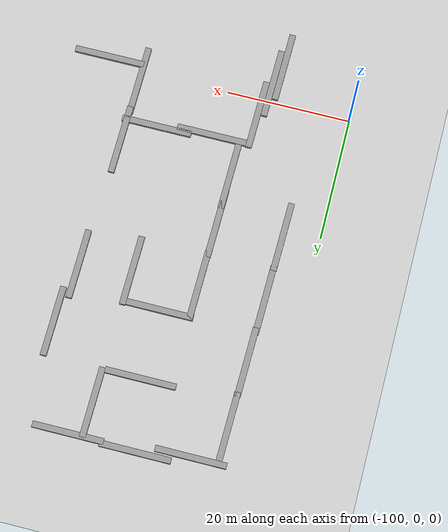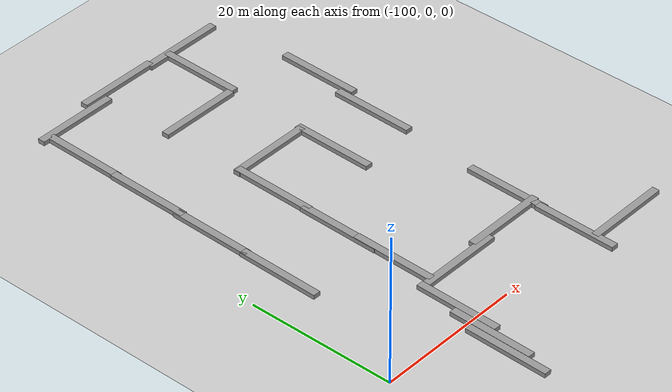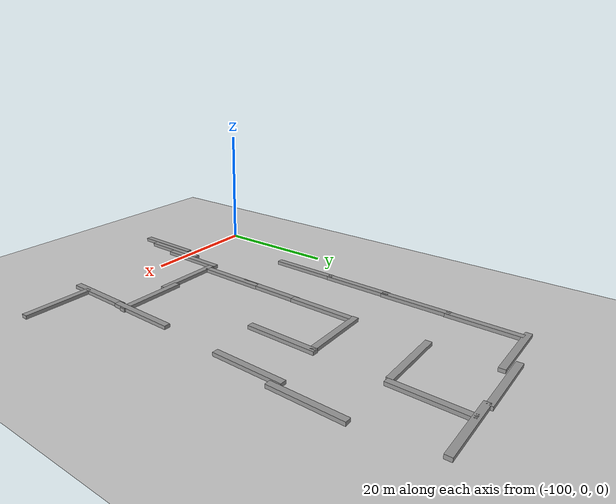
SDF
<sdf version="1.6">
 <world name="default">
  <model name="ground_plane">
   <static>1</static>
   <link name="link">
    <collision name="collision">
     <geometry><plane><normal>0 0 1</normal><size>100 100</size></plane></geometry>
     <surface><friction><ode><mu>100</mu><mu2>50</mu2></ode></friction></surface>
    </collision>
    <visual name="visual">
     <cast_shadows>0</cast_shadows>
     <geometry><plane><normal>0 0 1</normal><size>100 100</size></plane></geometry>
     <material>
      <script><uri>file://media/materials/scripts/gazebo.material</uri><name>Gazebo/Grey</name></script>
     </material>
    </visual>
   </link>
  </model>
  <model name="unit_box_0_static_clone_31">
   <link name="link">
    <inertial>
     <mass>11.3696</mass>
     <inertia><ixx>1.89495</ixx><ixy>0</ixy><ixz>0</ixz><iyy>123.426</iyy><iyz>0</iyz><izz>123.426</izz></inertia>
    </inertial>
    <kinematic>1</kinematic>
    <visual name="visual">
     <geometry><box><size>11.3696 1 1</size></box></geometry>
     <material>
      <script><name>Gazebo/Grey</name><uri>file://media/materials/scripts/gazebo.material</uri></script>
      <ambient>0.3 0.3 0.3 1</ambient>
      <diffuse>0.7 0.7 0.7 1</diffuse>
      <specular>0.01 0.01 0.01 1</specular>
      <emissive>0 0 0 1</emissive>
     </material>
    </visual>
    <collision name="collision">
     <geometry><box><size>11.3696 1 1</size></box></geometry>
     <surface>
      <friction>
       <ode><mu>1</mu><mu2>1</mu2><fdir1>0 0 0</fdir1><slip1>0</slip1><slip2>0</slip2></ode>
       <torsional>
        <coefficient>1</coefficient>
        <patch_radius>0</patch_radius>
        <surface_radius>0</surface_radius>
        <use_patch_radius>1</use_patch_radius>
        <ode><slip>0</slip></ode>
       </torsional>
      </friction>
      <bounce><restitution_coefficient>0</restitution_coefficient><threshold>1e+06</threshold></bounce>
      <contact>
       <collide_without_contact>0</collide_without_contact>
       <collide_without_contact_bitmask>1</collide_without_contact_bitmask>
       <collide_bitmask>1</collide_bitmask>
       <ode>
        <soft_cfm>0</soft_cfm>
        <soft_erp>0.2</soft_erp>
        <kp>1e+13</kp>
        <kd>1</kd>
        <max_vel>0.01</max_vel>
        <min_depth>0</min_depth>
       </ode>
       <bullet>
        <split_impulse>1</split_impulse>
        <split_impulse_penetration_threshold>-0.01</split_impulse_penetration_threshold>
        <soft_cfm>0</soft_cfm>
        <soft_erp>0.2</soft_erp>
        <kp>1e+13</kp>
        <kd>1</kd>
       </bullet>
      </contact>
     </surface>
    </collision>
   </link>
   <static>1</static>
   <pose>-70.2954 8.34873 0 0 -0 0</pose>
  </model>
  <model name="unit_box_0_static_clone_32">
   <link name="link">
    <inertial>
     <mass>11.3696</mass>
     <inertia><ixx>1.89495</ixx><ixy>0</ixy><ixz>0</ixz><iyy>123.426</iyy><iyz>0</iyz><izz>123.426</izz></inertia>
    </inertial>
    <kinematic>1</kinematic>
    <visual name="visual">
     <geometry><box><size>11.3696 1 1</size></box></geometry>
     <material>
      <script><name>Gazebo/Grey</name><uri>file://media/materials/scripts/gazebo.material</uri></script>
      <ambient>0.3 0.3 0.3 1</ambient>
      <diffuse>0.7 0.7 0.7 1</diffuse>
      <specular>0.01 0.01 0.01 1</specular>
      <emissive>0 0 0 1</emissive>
     </material>
    </visual>
    <collision name="collision">
     <geometry><box><size>11.3696 1 1</size></box></geometry>
     <surface>
      <friction>
       <ode><mu>1</mu><mu2>1</mu2><fdir1>0 0 0</fdir1><slip1>0</slip1><slip2>0</slip2></ode>
       <torsional>
        <coefficient>1</coefficient>
        <patch_radius>0</patch_radius>
        <surface_radius>0</surface_radius>
        <use_patch_radius>1</use_patch_radius>
        <ode><slip>0</slip></ode>
       </torsional>
      </friction>
      <bounce><restitution_coefficient>0</restitution_coefficient><threshold>1e+06</threshold></bounce>
      <contact>
       <collide_without_contact>0</collide_without_contact>
       <collide_without_contact_bitmask>1</collide_without_contact_bitmask>
       <collide_bitmask>1</collide_bitmask>
       <ode>
        <soft_cfm>0</soft_cfm>
        <soft_erp>0.2</soft_erp>
        <kp>1e+13</kp>
        <kd>1</kd>
        <max_vel>0.01</max_vel>
        <min_depth>0</min_depth>
       </ode>
       <bullet>
        <split_impulse>1</split_impulse>
        <split_impulse_penetration_threshold>-0.01</split_impulse_penetration_threshold>
        <soft_cfm>0</soft_cfm>
        <soft_erp>0.2</soft_erp>
        <kp>1e+13</kp>
        <kd>1</kd>
       </bullet>
      </contact>
     </surface>
    </collision>
   </link>
   <static>1</static>
   <pose>-79.1987 7.62941 0 0 -0 0</pose>
  </model>
  <model name="unit_box_0_static_clone_35_clone_5">
   <link name="link">
    <inertial>
     <mass>11.3696</mass>
     <inertia><ixx>1.89495</ixx><ixy>0</ixy><ixz>0</ixz><iyy>123.426</iyy><iyz>0</iyz><izz>123.426</izz></inertia>
    </inertial>
    <kinematic>1</kinematic>
    <visual name="visual">
     <geometry><box><size>11.3696 1 1</size></box></geometry>
     <material>
      <script><name>Gazebo/Grey</name><uri>file://media/materials/scripts/gazebo.material</uri></script>
      <ambient>0.3 0.3 0.3 1</ambient>
      <diffuse>0.7 0.7 0.7 1</diffuse>
      <specular>0.01 0.01 0.01 1</specular>
      <emissive>0 0 0 1</emissive>
     </material>
    </visual>
    <collision name="collision">
     <geometry><box><size>11.3696 1 1</size></box></geometry>
     <surface>
      <friction>
       <ode><mu>1</mu><mu2>1</mu2><fdir1>0 0 0</fdir1><slip1>0</slip1><slip2>0</slip2></ode>
       <torsional>
        <coefficient>1</coefficient>
        <patch_radius>0</patch_radius>
        <surface_radius>0</surface_radius>
        <use_patch_radius>1</use_patch_radius>
        <ode><slip>0</slip></ode>
       </torsional>
      </friction>
      <bounce><restitution_coefficient>0</restitution_coefficient><threshold>1e+06</threshold></bounce>
      <contact>
       <collide_without_contact>0</collide_without_contact>
       <collide_without_contact_bitmask>1</collide_without_contact_bitmask>
       <collide_bitmask>1</collide_bitmask>
       <ode>
        <soft_cfm>0</soft_cfm>
        <soft_erp>0.2</soft_erp>
        <kp>1e+13</kp>
        <kd>1</kd>
        <max_vel>0.01</max_vel>
        <min_depth>0</min_depth>
       </ode>
       <bullet>
        <split_impulse>1</split_impulse>
        <split_impulse_penetration_threshold>-0.01</split_impulse_penetration_threshold>
        <soft_cfm>0</soft_cfm>
        <soft_erp>0.2</soft_erp>
        <kp>1e+13</kp>
        <kd>1</kd>
       </bullet>
      </contact>
     </surface>
    </collision>
   </link>
   <static>1</static>
   <pose>-85.4789 2.52315 0 0 0 -1.5917</pose>
  </model>
  <model name="unit_box_0_static_clone_35_clone_6">
   <link name="link">
    <inertial>
     <mass>11.3696</mass>
     <inertia><ixx>1.89495</ixx><ixy>0</ixy><ixz>0</ixz><iyy>123.426</iyy><iyz>0</iyz><izz>123.426</izz></inertia>
    </inertial>
    <kinematic>1</kinematic>
    <visual name="visual">
     <geometry><box><size>11.3696 1 1</size></box></geometry>
     <material>
      <script><name>Gazebo/Grey</name><uri>file://media/materials/scripts/gazebo.material</uri></script>
      <ambient>0.3 0.3 0.3 1</ambient>
      <diffuse>0.7 0.7 0.7 1</diffuse>
      <specular>0.01 0.01 0.01 1</specular>
      <emissive>0 0 0 1</emissive>
     </material>
    </visual>
    <collision name="collision">
     <geometry><box><size>11.3696 1 1</size></box></geometry>
     <surface>
      <friction>
       <ode><mu>1</mu><mu2>1</mu2><fdir1>0 0 0</fdir1><slip1>0</slip1><slip2>0</slip2></ode>
       <torsional>
        <coefficient>1</coefficient>
        <patch_radius>0</patch_radius>
        <surface_radius>0</surface_radius>
        <use_patch_radius>1</use_patch_radius>
        <ode><slip>0</slip></ode>
       </torsional>
      </friction>
      <bounce><restitution_coefficient>0</restitution_coefficient><threshold>1e+06</threshold></bounce>
      <contact>
       <collide_without_contact>0</collide_without_contact>
       <collide_without_contact_bitmask>1</collide_without_contact_bitmask>
       <collide_bitmask>1</collide_bitmask>
       <ode>
        <soft_cfm>0</soft_cfm>
        <soft_erp>0.2</soft_erp>
        <kp>1e+13</kp>
        <kd>1</kd>
        <max_vel>0.01</max_vel>
        <min_depth>0</min_depth>
       </ode>
       <bullet>
        <split_impulse>1</split_impulse>
        <split_impulse_penetration_threshold>-0.01</split_impulse_penetration_threshold>
        <soft_cfm>0</soft_cfm>
        <soft_erp>0.2</soft_erp>
        <kp>1e+13</kp>
        <kd>1</kd>
       </bullet>
      </contact>
     </surface>
    </collision>
   </link>
   <static>1</static>
   <pose>-86.6039 -3.1929 0 0 0 -1.5917</pose>
  </model>
  <model name="unit_box_0_static_clone_35_clone_7">
   <link name="link">
    <inertial>
     <mass>11.3696</mass>
     <inertia><ixx>1.89495</ixx><ixy>0</ixy><ixz>0</ixz><iyy>123.426</iyy><iyz>0</iyz><izz>123.426</izz></inertia>
    </inertial>
    <kinematic>1</kinematic>
    <visual name="visual">
     <geometry><box><size>11.3696 1 1</size></box></geometry>
     <material>
      <script><name>Gazebo/Grey</name><uri>file://media/materials/scripts/gazebo.material</uri></script>
      <ambient>0.3 0.3 0.3 1</ambient>
      <diffuse>0.7 0.7 0.7 1</diffuse>
      <specular>0.01 0.01 0.01 1</specular>
      <emissive>0 0 0 1</emissive>
     </material>
    </visual>
    <collision name="collision">
     <geometry><box><size>11.3696 1 1</size></box></geometry>
     <surface>
      <friction>
       <ode><mu>1</mu><mu2>1</mu2><fdir1>0 0 0</fdir1><slip1>0</slip1><slip2>0</slip2></ode>
       <torsional>
        <coefficient>1</coefficient>
        <patch_radius>0</patch_radius>
        <surface_radius>0</surface_radius>
        <use_patch_radius>1</use_patch_radius>
        <ode><slip>0</slip></ode>
       </torsional>
      </friction>
      <bounce><restitution_coefficient>0</restitution_coefficient><threshold>1e+06</threshold></bounce>
      <contact>
       <collide_without_contact>0</collide_without_contact>
       <collide_without_contact_bitmask>1</collide_without_contact_bitmask>
       <collide_bitmask>1</collide_bitmask>
       <ode>
        <soft_cfm>0</soft_cfm>
        <soft_erp>0.2</soft_erp>
        <kp>1e+13</kp>
        <kd>1</kd>
        <max_vel>0.01</max_vel>
        <min_depth>0</min_depth>
       </ode>
       <bullet>
        <split_impulse>1</split_impulse>
        <split_impulse_penetration_threshold>-0.01</split_impulse_penetration_threshold>
        <soft_cfm>0</soft_cfm>
        <soft_erp>0.2</soft_erp>
        <kp>1e+13</kp>
        <kd>1</kd>
       </bullet>
      </contact>
     </surface>
    </collision>
   </link>
   <static>1</static>
   <pose>-87.6852 -6.31713 0 0 0 -1.5917</pose>
  </model>
  <model name="unit_box_0_static_clone_35_clone_7_clone">
   <link name="link">
    <inertial>
     <mass>11.3696</mass>
     <inertia><ixx>1.89495</ixx><ixy>0</ixy><ixz>0</ixz><iyy>123.426</iyy><iyz>0</iyz><izz>123.426</izz></inertia>
    </inertial>
    <kinematic>1</kinematic>
    <visual name="visual">
     <geometry><box><size>11.3696 1 1</size></box></geometry>
     <material>
      <script><name>Gazebo/Grey</name><uri>file://media/materials/scripts/gazebo.material</uri></script>
      <ambient>0.3 0.3 0.3 1</ambient>
      <diffuse>0.7 0.7 0.7 1</diffuse>
      <specular>0.01 0.01 0.01 1</specular>
      <emissive>0 0 0 1</emissive>
     </material>
    </visual>
    <collision name="collision">
     <geometry><box><size>11.3696 1 1</size></box></geometry>
     <surface>
      <friction>
       <ode><mu>1</mu><mu2>1</mu2><fdir1>0 0 0</fdir1><slip1>0</slip1><slip2>0</slip2></ode>
       <torsional>
        <coefficient>1</coefficient>
        <patch_radius>0</patch_radius>
        <surface_radius>0</surface_radius>
        <use_patch_radius>1</use_patch_radius>
        <ode><slip>0</slip></ode>
       </torsional>
      </friction>
      <bounce><restitution_coefficient>0</restitution_coefficient><threshold>1e+06</threshold></bounce>
      <contact>
       <collide_without_contact>0</collide_without_contact>
       <collide_without_contact_bitmask>1</collide_without_contact_bitmask>
       <collide_bitmask>1</collide_bitmask>
       <ode>
        <soft_cfm>0</soft_cfm>
        <soft_erp>0.2</soft_erp>
        <kp>1e+13</kp>
        <kd>1</kd>
        <max_vel>0.01</max_vel>
        <min_depth>0</min_depth>
       </ode>
       <bullet>
        <split_impulse>1</split_impulse>
        <split_impulse_penetration_threshold>-0.01</split_impulse_penetration_threshold>
        <soft_cfm>0</soft_cfm>
        <soft_erp>0.2</soft_erp>
        <kp>1e+13</kp>
        <kd>1</kd>
       </bullet>
      </contact>
     </surface>
    </collision>
   </link>
   <static>1</static>
   <pose>-65.6401 1.59168 0 0 0 -1.5917</pose>
  </model>
  <model name="unit_box_0_static_clone_31_clone">
   <link name="link">
    <inertial>
     <mass>11.3696</mass>
     <inertia><ixx>1.89495</ixx><ixy>0</ixy><ixz>0</ixz><iyy>123.426</iyy><iyz>0</iyz><izz>123.426</izz></inertia>
    </inertial>
    <kinematic>1</kinematic>
    <visual name="visual">
     <geometry><box><size>11.3696 1 1</size></box></geometry>
     <material>
      <script><name>Gazebo/Grey</name><uri>file://media/materials/scripts/gazebo.material</uri></script>
      <ambient>0.3 0.3 0.3 1</ambient>
      <diffuse>0.7 0.7 0.7 1</diffuse>
      <specular>0.01 0.01 0.01 1</specular>
      <emissive>0 0 0 1</emissive>
     </material>
    </visual>
    <collision name="collision">
     <geometry><box><size>11.3696 1 1</size></box></geometry>
     <surface>
      <friction>
       <ode><mu>1</mu><mu2>1</mu2><fdir1>0 0 0</fdir1><slip1>0</slip1><slip2>0</slip2></ode>
       <torsional>
        <coefficient>1</coefficient>
        <patch_radius>0</patch_radius>
        <surface_radius>0</surface_radius>
        <use_patch_radius>1</use_patch_radius>
        <ode><slip>0</slip></ode>
       </torsional>
      </friction>
      <bounce><restitution_coefficient>0</restitution_coefficient><threshold>1e+06</threshold></bounce>
      <contact>
       <collide_without_contact>0</collide_without_contact>
       <collide_without_contact_bitmask>1</collide_without_contact_bitmask>
       <collide_bitmask>1</collide_bitmask>
       <ode>
        <soft_cfm>0</soft_cfm>
        <soft_erp>0.2</soft_erp>
        <kp>1e+13</kp>
        <kd>1</kd>
        <max_vel>0.01</max_vel>
        <min_depth>0</min_depth>
       </ode>
       <bullet>
        <split_impulse>1</split_impulse>
        <split_impulse_penetration_threshold>-0.01</split_impulse_penetration_threshold>
        <soft_cfm>0</soft_cfm>
        <soft_erp>0.2</soft_erp>
        <kp>1e+13</kp>
        <kd>1</kd>
       </bullet>
      </contact>
     </surface>
    </collision>
   </link>
   <static>1</static>
   <pose>-59.9978 -1.18994 0 0 -0 0</pose>
  </model>
  <model name="unit_box_0_static_clone_35_clone_10_clone_clone_clone_clone_0">
   <link name="link">
    <inertial>
     <mass>11.3696</mass>
     <inertia><ixx>1.89495</ixx><ixy>0</ixy><ixz>0</ixz><iyy>123.426</iyy><iyz>0</iyz><izz>123.426</izz></inertia>
    </inertial>
    <kinematic>1</kinematic>
    <visual name="visual">
     <geometry><box><size>11.3696 1 1</size></box></geometry>
     <material>
      <script><name>Gazebo/Grey</name><uri>file://media/materials/scripts/gazebo.material</uri></script>
      <ambient>0.3 0.3 0.3 1</ambient>
      <diffuse>0.7 0.7 0.7 1</diffuse>
      <specular>0.01 0.01 0.01 1</specular>
      <emissive>0 0 0 1</emissive>
     </material>
    </visual>
    <collision name="collision">
     <geometry><box><size>11.3696 1 1</size></box></geometry>
     <surface>
      <friction>
       <ode><mu>1</mu><mu2>1</mu2><fdir1>0 0 0</fdir1><slip1>0</slip1><slip2>0</slip2></ode>
       <torsional>
        <coefficient>1</coefficient>
        <patch_radius>0</patch_radius>
        <surface_radius>0</surface_radius>
        <use_patch_radius>1</use_patch_radius>
        <ode><slip>0</slip></ode>
       </torsional>
      </friction>
      <bounce><restitution_coefficient>0</restitution_coefficient><threshold>1e+06</threshold></bounce>
      <contact>
       <collide_without_contact>0</collide_without_contact>
       <collide_without_contact_bitmask>1</collide_without_contact_bitmask>
       <collide_bitmask>1</collide_bitmask>
       <ode>
        <soft_cfm>0</soft_cfm>
        <soft_erp>0.2</soft_erp>
        <kp>1e+13</kp>
        <kd>1</kd>
        <max_vel>0.01</max_vel>
        <min_depth>0</min_depth>
       </ode>
       <bullet>
        <split_impulse>1</split_impulse>
        <split_impulse_penetration_threshold>-0.01</split_impulse_penetration_threshold>
        <soft_cfm>0</soft_cfm>
        <soft_erp>0.2</soft_erp>
        <kp>1e+13</kp>
        <kd>1</kd>
       </bullet>
      </contact>
     </surface>
    </collision>
   </link>
   <static>1</static>
   <pose>-62.671 43.236 0 0 0 -1.5917</pose>
  </model>
  <model name="unit_box_0_static_clone_35_clone_10_clone_clone_clone_clone_1">
   <link name="link">
    <inertial>
     <mass>11.3696</mass>
     <inertia><ixx>1.89495</ixx><ixy>0</ixy><ixz>0</ixz><iyy>123.426</iyy><iyz>0</iyz><izz>123.426</izz></inertia>
    </inertial>
    <kinematic>1</kinematic>
    <visual name="visual">
     <geometry><box><size>11.3696 1 1</size></box></geometry>
     <material>
      <script><name>Gazebo/Grey</name><uri>file://media/materials/scripts/gazebo.material</uri></script>
      <ambient>0.3 0.3 0.3 1</ambient>
      <diffuse>0.7 0.7 0.7 1</diffuse>
      <specular>0.01 0.01 0.01 1</specular>
      <emissive>0 0 0 1</emissive>
     </material>
    </visual>
    <collision name="collision">
     <geometry><box><size>11.3696 1 1</size></box></geometry>
     <surface>
      <friction>
       <ode><mu>1</mu><mu2>1</mu2><fdir1>0 0 0</fdir1><slip1>0</slip1><slip2>0</slip2></ode>
       <torsional>
        <coefficient>1</coefficient>
        <patch_radius>0</patch_radius>
        <surface_radius>0</surface_radius>
        <use_patch_radius>1</use_patch_radius>
        <ode><slip>0</slip></ode>
       </torsional>
      </friction>
      <bounce><restitution_coefficient>0</restitution_coefficient><threshold>1e+06</threshold></bounce>
      <contact>
       <collide_without_contact>0</collide_without_contact>
       <collide_without_contact_bitmask>1</collide_without_contact_bitmask>
       <collide_bitmask>1</collide_bitmask>
       <ode>
        <soft_cfm>0</soft_cfm>
        <soft_erp>0.2</soft_erp>
        <kp>1e+13</kp>
        <kd>1</kd>
        <max_vel>0.01</max_vel>
        <min_depth>0</min_depth>
       </ode>
       <bullet>
        <split_impulse>1</split_impulse>
        <split_impulse_penetration_threshold>-0.01</split_impulse_penetration_threshold>
        <soft_cfm>0</soft_cfm>
        <soft_erp>0.2</soft_erp>
        <kp>1e+13</kp>
        <kd>1</kd>
       </bullet>
      </contact>
     </surface>
    </collision>
   </link>
   <static>1</static>
   <pose>-64.1051 33.3823 0 0 0 -1.5917</pose>
  </model>
  <model name="unit_box_0_static_clone_35_clone_10_clone_clone_clone_clone_2">
   <link name="link">
    <inertial>
     <mass>11.3696</mass>
     <inertia><ixx>1.89495</ixx><ixy>0</ixy><ixz>0</ixz><iyy>123.426</iyy><iyz>0</iyz><izz>123.426</izz></inertia>
    </inertial>
    <kinematic>1</kinematic>
    <visual name="visual">
     <geometry><box><size>11.3696 1 1</size></box></geometry>
     <material>
      <script><name>Gazebo/Grey</name><uri>file://media/materials/scripts/gazebo.material</uri></script>
      <ambient>0.3 0.3 0.3 1</ambient>
      <diffuse>0.7 0.7 0.7 1</diffuse>
      <specular>0.01 0.01 0.01 1</specular>
      <emissive>0 0 0 1</emissive>
     </material>
    </visual>
    <collision name="collision">
     <geometry><box><size>11.3696 1 1</size></box></geometry>
     <surface>
      <friction>
       <ode><mu>1</mu><mu2>1</mu2><fdir1>0 0 0</fdir1><slip1>0</slip1><slip2>0</slip2></ode>
       <torsional>
        <coefficient>1</coefficient>
        <patch_radius>0</patch_radius>
        <surface_radius>0</surface_radius>
        <use_patch_radius>1</use_patch_radius>
        <ode><slip>0</slip></ode>
       </torsional>
      </friction>
      <bounce><restitution_coefficient>0</restitution_coefficient><threshold>1e+06</threshold></bounce>
      <contact>
       <collide_without_contact>0</collide_without_contact>
       <collide_without_contact_bitmask>1</collide_without_contact_bitmask>
       <collide_bitmask>1</collide_bitmask>
       <ode>
        <soft_cfm>0</soft_cfm>
        <soft_erp>0.2</soft_erp>
        <kp>1e+13</kp>
        <kd>1</kd>
        <max_vel>0.01</max_vel>
        <min_depth>0</min_depth>
       </ode>
       <bullet>
        <split_impulse>1</split_impulse>
        <split_impulse_penetration_threshold>-0.01</split_impulse_penetration_threshold>
        <soft_cfm>0</soft_cfm>
        <soft_erp>0.2</soft_erp>
        <kp>1e+13</kp>
        <kd>1</kd>
       </bullet>
      </contact>
     </surface>
    </collision>
   </link>
   <static>1</static>
   <pose>-65.2895 11.9149 0 0 0 -1.5917</pose>
  </model>
  <model name="unit_box_0_static_clone_35_clone_10_clone_clone_clone_clone_1_clone">
   <link name="link">
    <inertial>
     <mass>11.3696</mass>
     <inertia><ixx>1.89495</ixx><ixy>0</ixy><ixz>0</ixz><iyy>123.426</iyy><iyz>0</iyz><izz>123.426</izz></inertia>
    </inertial>
    <kinematic>1</kinematic>
    <visual name="visual">
     <geometry><box><size>11.3696 1 1</size></box></geometry>
     <material>
      <script><name>Gazebo/Grey</name><uri>file://media/materials/scripts/gazebo.material</uri></script>
      <ambient>0.3 0.3 0.3 1</ambient>
      <diffuse>0.7 0.7 0.7 1</diffuse>
      <specular>0.01 0.01 0.01 1</specular>
      <emissive>0 0 0 1</emissive>
     </material>
    </visual>
    <collision name="collision">
     <geometry><box><size>11.3696 1 1</size></box></geometry>
     <surface>
      <friction>
       <ode><mu>1</mu><mu2>1</mu2><fdir1>0 0 0</fdir1><slip1>0</slip1><slip2>0</slip2></ode>
       <torsional>
        <coefficient>1</coefficient>
        <patch_radius>0</patch_radius>
        <surface_radius>0</surface_radius>
        <use_patch_radius>1</use_patch_radius>
        <ode><slip>0</slip></ode>
       </torsional>
      </friction>
      <bounce><restitution_coefficient>0</restitution_coefficient><threshold>1e+06</threshold></bounce>
      <contact>
       <collide_without_contact>0</collide_without_contact>
       <collide_without_contact_bitmask>1</collide_without_contact_bitmask>
       <collide_bitmask>1</collide_bitmask>
       <ode>
        <soft_cfm>0</soft_cfm>
        <soft_erp>0.2</soft_erp>
        <kp>1e+13</kp>
        <kd>1</kd>
        <max_vel>0.01</max_vel>
        <min_depth>0</min_depth>
       </ode>
       <bullet>
        <split_impulse>1</split_impulse>
        <split_impulse_penetration_threshold>-0.01</split_impulse_penetration_threshold>
        <soft_cfm>0</soft_cfm>
        <soft_erp>0.2</soft_erp>
        <kp>1e+13</kp>
        <kd>1</kd>
       </bullet>
      </contact>
     </surface>
    </collision>
   </link>
   <static>1</static>
   <pose>-72.5184 32.3568 0 0 0 -1.5917</pose>
  </model>
  <model name="unit_box_0_static_clone_35_clone_10_clone_clone_clone_clone_1_clone_0">
   <link name="link">
    <inertial>
     <mass>11.3696</mass>
     <inertia><ixx>1.89495</ixx><ixy>0</ixy><ixz>0</ixz><iyy>123.426</iyy><iyz>0</iyz><izz>123.426</izz></inertia>
    </inertial>
    <kinematic>1</kinematic>
    <visual name="visual">
     <geometry><box><size>11.3696 1 1</size></box></geometry>
     <material>
      <script><name>Gazebo/Grey</name><uri>file://media/materials/scripts/gazebo.material</uri></script>
      <ambient>0.3 0.3 0.3 1</ambient>
      <diffuse>0.7 0.7 0.7 1</diffuse>
      <specular>0.01 0.01 0.01 1</specular>
      <emissive>0 0 0 1</emissive>
     </material>
    </visual>
    <collision name="collision">
     <geometry><box><size>11.3696 1 1</size></box></geometry>
     <surface>
      <friction>
       <ode><mu>1</mu><mu2>1</mu2><fdir1>0 0 0</fdir1><slip1>0</slip1><slip2>0</slip2></ode>
       <torsional>
        <coefficient>1</coefficient>
        <patch_radius>0</patch_radius>
        <surface_radius>0</surface_radius>
        <use_patch_radius>1</use_patch_radius>
        <ode><slip>0</slip></ode>
       </torsional>
      </friction>
      <bounce><restitution_coefficient>0</restitution_coefficient><threshold>1e+06</threshold></bounce>
      <contact>
       <collide_without_contact>0</collide_without_contact>
       <collide_without_contact_bitmask>1</collide_without_contact_bitmask>
       <collide_bitmask>1</collide_bitmask>
       <ode>
        <soft_cfm>0</soft_cfm>
        <soft_erp>0.2</soft_erp>
        <kp>1e+13</kp>
        <kd>1</kd>
        <max_vel>0.01</max_vel>
        <min_depth>0</min_depth>
       </ode>
       <bullet>
        <split_impulse>1</split_impulse>
        <split_impulse_penetration_threshold>-0.01</split_impulse_penetration_threshold>
        <soft_cfm>0</soft_cfm>
        <soft_erp>0.2</soft_erp>
        <kp>1e+13</kp>
        <kd>1</kd>
       </bullet>
      </contact>
     </surface>
    </collision>
   </link>
   <static>1</static>
   <pose>-71.9102 54.1445 0 0 0 -1.5917</pose>
  </model>
  <model name="unit_box_0_static_clone_25_clone_1_clone_0_clone_1">
   <link name="link">
    <inertial>
     <mass>11.3696</mass>
     <inertia><ixx>1.89495</ixx><ixy>0</ixy><ixz>0</ixz><iyy>123.426</iyy><iyz>0</iyz><izz>123.426</izz></inertia>
    </inertial>
    <kinematic>1</kinematic>
    <visual name="visual">
     <geometry><box><size>11.3696 1 1</size></box></geometry>
     <material>
      <script><name>Gazebo/Grey</name><uri>file://media/materials/scripts/gazebo.material</uri></script>
      <ambient>0.3 0.3 0.3 1</ambient>
      <diffuse>0.7 0.7 0.7 1</diffuse>
      <specular>0.01 0.01 0.01 1</specular>
      <emissive>0 0 0 1</emissive>
     </material>
    </visual>
    <collision name="collision">
     <geometry><box><size>11.3696 1 1</size></box></geometry>
     <surface>
      <friction>
       <ode><mu>1</mu><mu2>1</mu2><fdir1>0 0 0</fdir1><slip1>0</slip1><slip2>0</slip2></ode>
       <torsional>
        <coefficient>1</coefficient>
        <patch_radius>0</patch_radius>
        <surface_radius>0</surface_radius>
        <use_patch_radius>1</use_patch_radius>
        <ode><slip>0</slip></ode>
       </torsional>
      </friction>
      <bounce><restitution_coefficient>0</restitution_coefficient><threshold>1e+06</threshold></bounce>
      <contact>
       <collide_without_contact>0</collide_without_contact>
       <collide_without_contact_bitmask>1</collide_without_contact_bitmask>
       <collide_bitmask>1</collide_bitmask>
       <ode>
        <soft_cfm>0</soft_cfm>
        <soft_erp>0.2</soft_erp>
        <kp>1e+13</kp>
        <kd>1</kd>
        <max_vel>0.01</max_vel>
        <min_depth>0</min_depth>
       </ode>
       <bullet>
        <split_impulse>1</split_impulse>
        <split_impulse_penetration_threshold>-0.01</split_impulse_penetration_threshold>
        <soft_cfm>0</soft_cfm>
        <soft_erp>0.2</soft_erp>
        <kp>1e+13</kp>
        <kd>1</kd>
       </bullet>
      </contact>
     </surface>
    </collision>
   </link>
   <static>1</static>
   <pose>-69.4677 59.6922 0 0 -0 0</pose>
  </model>
  <model name="unit_box_0_static_clone_25_clone_1_clone_0_clone_2">
   <link name="link">
    <inertial>
     <mass>11.3696</mass>
     <inertia><ixx>1.89495</ixx><ixy>0</ixy><ixz>0</ixz><iyy>123.426</iyy><iyz>0</iyz><izz>123.426</izz></inertia>
    </inertial>
    <kinematic>1</kinematic>
    <visual name="visual">
     <geometry><box><size>11.3696 1 1</size></box></geometry>
     <material>
      <script><name>Gazebo/Grey</name><uri>file://media/materials/scripts/gazebo.material</uri></script>
      <ambient>0.3 0.3 0.3 1</ambient>
      <diffuse>0.7 0.7 0.7 1</diffuse>
      <specular>0.01 0.01 0.01 1</specular>
      <emissive>0 0 0 1</emissive>
     </material>
    </visual>
    <collision name="collision">
     <geometry><box><size>11.3696 1 1</size></box></geometry>
     <surface>
      <friction>
       <ode><mu>1</mu><mu2>1</mu2><fdir1>0 0 0</fdir1><slip1>0</slip1><slip2>0</slip2></ode>
       <torsional>
        <coefficient>1</coefficient>
        <patch_radius>0</patch_radius>
        <surface_radius>0</surface_radius>
        <use_patch_radius>1</use_patch_radius>
        <ode><slip>0</slip></ode>
       </torsional>
      </friction>
      <bounce><restitution_coefficient>0</restitution_coefficient><threshold>1e+06</threshold></bounce>
      <contact>
       <collide_without_contact>0</collide_without_contact>
       <collide_without_contact_bitmask>1</collide_without_contact_bitmask>
       <collide_bitmask>1</collide_bitmask>
       <ode>
        <soft_cfm>0</soft_cfm>
        <soft_erp>0.2</soft_erp>
        <kp>1e+13</kp>
        <kd>1</kd>
        <max_vel>0.01</max_vel>
        <min_depth>0</min_depth>
       </ode>
       <bullet>
        <split_impulse>1</split_impulse>
        <split_impulse_penetration_threshold>-0.01</split_impulse_penetration_threshold>
        <soft_cfm>0</soft_cfm>
        <soft_erp>0.2</soft_erp>
        <kp>1e+13</kp>
        <kd>1</kd>
       </bullet>
      </contact>
     </surface>
    </collision>
   </link>
   <static>1</static>
   <pose>-78.1546 48.6961 0 0 -0 0</pose>
  </model>
  <model name="unit_box_0_static_clone_25_clone_1_clone_0_clone_3">
   <link name="link">
    <inertial>
     <mass>11.3696</mass>
     <inertia><ixx>1.89495</ixx><ixy>0</ixy><ixz>0</ixz><iyy>123.426</iyy><iyz>0</iyz><izz>123.426</izz></inertia>
    </inertial>
    <kinematic>1</kinematic>
    <visual name="visual">
     <geometry><box><size>11.3696 1 1</size></box></geometry>
     <material>
      <script><name>Gazebo/Grey</name><uri>file://media/materials/scripts/gazebo.material</uri></script>
      <ambient>0.3 0.3 0.3 1</ambient>
      <diffuse>0.7 0.7 0.7 1</diffuse>
      <specular>0.01 0.01 0.01 1</specular>
      <emissive>0 0 0 1</emissive>
     </material>
    </visual>
    <collision name="collision">
     <geometry><box><size>11.3696 1 1</size></box></geometry>
     <surface>
      <friction>
       <ode><mu>1</mu><mu2>1</mu2><fdir1>0 0 0</fdir1><slip1>0</slip1><slip2>0</slip2></ode>
       <torsional>
        <coefficient>1</coefficient>
        <patch_radius>0</patch_radius>
        <surface_radius>0</surface_radius>
        <use_patch_radius>1</use_patch_radius>
        <ode><slip>0</slip></ode>
       </torsional>
      </friction>
      <bounce><restitution_coefficient>0</restitution_coefficient><threshold>1e+06</threshold></bounce>
      <contact>
       <collide_without_contact>0</collide_without_contact>
       <collide_without_contact_bitmask>1</collide_without_contact_bitmask>
       <collide_bitmask>1</collide_bitmask>
       <ode>
        <soft_cfm>0</soft_cfm>
        <soft_erp>0.2</soft_erp>
        <kp>1e+13</kp>
        <kd>1</kd>
        <max_vel>0.01</max_vel>
        <min_depth>0</min_depth>
       </ode>
       <bullet>
        <split_impulse>1</split_impulse>
        <split_impulse_penetration_threshold>-0.01</split_impulse_penetration_threshold>
        <soft_cfm>0</soft_cfm>
        <soft_erp>0.2</soft_erp>
        <kp>1e+13</kp>
        <kd>1</kd>
       </bullet>
      </contact>
     </surface>
    </collision>
   </link>
   <static>1</static>
   <pose>-78.0275 37.4117 0 0 -0 0</pose>
  </model>
  <model name="unit_box_0_static_clone_25_clone_1_clone_0_clone_4">
   <link name="link">
    <inertial>
     <mass>11.3696</mass>
     <inertia><ixx>1.89495</ixx><ixy>0</ixy><ixz>0</ixz><iyy>123.426</iyy><iyz>0</iyz><izz>123.426</izz></inertia>
    </inertial>
    <kinematic>1</kinematic>
    <visual name="visual">
     <geometry><box><size>11.3696 1 1</size></box></geometry>
     <material>
      <script><name>Gazebo/Grey</name><uri>file://media/materials/scripts/gazebo.material</uri></script>
      <ambient>0.3 0.3 0.3 1</ambient>
      <diffuse>0.7 0.7 0.7 1</diffuse>
      <specular>0.01 0.01 0.01 1</specular>
      <emissive>0 0 0 1</emissive>
     </material>
    </visual>
    <collision name="collision">
     <geometry><box><size>11.3696 1 1</size></box></geometry>
     <surface>
      <friction>
       <ode><mu>1</mu><mu2>1</mu2><fdir1>0 0 0</fdir1><slip1>0</slip1><slip2>0</slip2></ode>
       <torsional>
        <coefficient>1</coefficient>
        <patch_radius>0</patch_radius>
        <surface_radius>0</surface_radius>
        <use_patch_radius>1</use_patch_radius>
        <ode><slip>0</slip></ode>
       </torsional>
      </friction>
      <bounce><restitution_coefficient>0</restitution_coefficient><threshold>1e+06</threshold></bounce>
      <contact>
       <collide_without_contact>0</collide_without_contact>
       <collide_without_contact_bitmask>1</collide_without_contact_bitmask>
       <collide_bitmask>1</collide_bitmask>
       <ode>
        <soft_cfm>0</soft_cfm>
        <soft_erp>0.2</soft_erp>
        <kp>1e+13</kp>
        <kd>1</kd>
        <max_vel>0.01</max_vel>
        <min_depth>0</min_depth>
       </ode>
       <bullet>
        <split_impulse>1</split_impulse>
        <split_impulse_penetration_threshold>-0.01</split_impulse_penetration_threshold>
        <soft_cfm>0</soft_cfm>
        <soft_erp>0.2</soft_erp>
        <kp>1e+13</kp>
        <kd>1</kd>
       </bullet>
      </contact>
     </surface>
    </collision>
   </link>
   <static>1</static>
   <pose>-80.2529 60.0303 0 0 -0 0</pose>
  </model>
  <model name="unit_box_0_static_clone_25_clone_1_clone_0_clone_5">
   <link name="link">
    <inertial>
     <mass>11.3696</mass>
     <inertia><ixx>1.89495</ixx><ixy>0</ixy><ixz>0</ixz><iyy>123.426</iyy><iyz>0</iyz><izz>123.426</izz></inertia>
    </inertial>
    <kinematic>1</kinematic>
    <visual name="visual">
     <geometry><box><size>11.3696 1 1</size></box></geometry>
     <material>
      <script><name>Gazebo/Grey</name><uri>file://media/materials/scripts/gazebo.material</uri></script>
      <ambient>0.3 0.3 0.3 1</ambient>
      <diffuse>0.7 0.7 0.7 1</diffuse>
      <specular>0.01 0.01 0.01 1</specular>
      <emissive>0 0 0 1</emissive>
     </material>
    </visual>
    <collision name="collision">
     <geometry><box><size>11.3696 1 1</size></box></geometry>
     <surface>
      <friction>
       <ode><mu>1</mu><mu2>1</mu2><fdir1>0 0 0</fdir1><slip1>0</slip1><slip2>0</slip2></ode>
       <torsional>
        <coefficient>1</coefficient>
        <patch_radius>0</patch_radius>
        <surface_radius>0</surface_radius>
        <use_patch_radius>1</use_patch_radius>
        <ode><slip>0</slip></ode>
       </torsional>
      </friction>
      <bounce><restitution_coefficient>0</restitution_coefficient><threshold>1e+06</threshold></bounce>
      <contact>
       <collide_without_contact>0</collide_without_contact>
       <collide_without_contact_bitmask>1</collide_without_contact_bitmask>
       <collide_bitmask>1</collide_bitmask>
       <ode>
        <soft_cfm>0</soft_cfm>
        <soft_erp>0.2</soft_erp>
        <kp>1e+13</kp>
        <kd>1</kd>
        <max_vel>0.01</max_vel>
        <min_depth>0</min_depth>
       </ode>
       <bullet>
        <split_impulse>1</split_impulse>
        <split_impulse_penetration_threshold>-0.01</split_impulse_penetration_threshold>
        <soft_cfm>0</soft_cfm>
        <soft_erp>0.2</soft_erp>
        <kp>1e+13</kp>
        <kd>1</kd>
       </bullet>
      </contact>
     </surface>
    </collision>
   </link>
   <static>1</static>
   <pose>-88.7368 58.6992 0 0 -0 0</pose>
  </model>
  <model name="unit_box_0_static_clone_35_clone_10_clone_clone_clone_clone_0_clone">
   <link name="link">
    <inertial>
     <mass>11.3696</mass>
     <inertia><ixx>1.89495</ixx><ixy>0</ixy><ixz>0</ixz><iyy>123.426</iyy><iyz>0</iyz><izz>123.426</izz></inertia>
    </inertial>
    <kinematic>1</kinematic>
    <visual name="visual">
     <geometry><box><size>11.3696 1 1</size></box></geometry>
     <material>
      <script><name>Gazebo/Grey</name><uri>file://media/materials/scripts/gazebo.material</uri></script>
      <ambient>0.3 0.3 0.3 1</ambient>
      <diffuse>0.7 0.7 0.7 1</diffuse>
      <specular>0.01 0.01 0.01 1</specular>
      <emissive>0 0 0 1</emissive>
     </material>
    </visual>
    <collision name="collision">
     <geometry><box><size>11.3696 1 1</size></box></geometry>
     <surface>
      <friction>
       <ode><mu>1</mu><mu2>1</mu2><fdir1>0 0 0</fdir1><slip1>0</slip1><slip2>0</slip2></ode>
       <torsional>
        <coefficient>1</coefficient>
        <patch_radius>0</patch_radius>
        <surface_radius>0</surface_radius>
        <use_patch_radius>1</use_patch_radius>
        <ode><slip>0</slip></ode>
       </torsional>
      </friction>
      <bounce><restitution_coefficient>0</restitution_coefficient><threshold>1e+06</threshold></bounce>
      <contact>
       <collide_without_contact>0</collide_without_contact>
       <collide_without_contact_bitmask>1</collide_without_contact_bitmask>
       <collide_bitmask>1</collide_bitmask>
       <ode>
        <soft_cfm>0</soft_cfm>
        <soft_erp>0.2</soft_erp>
        <kp>1e+13</kp>
        <kd>1</kd>
        <max_vel>0.01</max_vel>
        <min_depth>0</min_depth>
       </ode>
       <bullet>
        <split_impulse>1</split_impulse>
        <split_impulse_penetration_threshold>-0.01</split_impulse_penetration_threshold>
        <soft_cfm>0</soft_cfm>
        <soft_erp>0.2</soft_erp>
        <kp>1e+13</kp>
        <kd>1</kd>
       </bullet>
      </contact>
     </surface>
    </collision>
   </link>
   <static>1</static>
   <pose>-93.1876 52.8045 0 0 0 -1.5917</pose>
  </model>
  <model name="unit_box_0_static_clone_35_clone_10_clone_clone_clone_clone_0_clone_0">
   <link name="link">
    <inertial>
     <mass>11.3696</mass>
     <inertia><ixx>1.89495</ixx><ixy>0</ixy><ixz>0</ixz><iyy>123.426</iyy><iyz>0</iyz><izz>123.426</izz></inertia>
    </inertial>
    <kinematic>1</kinematic>
    <visual name="visual">
     <geometry><box><size>11.3696 1 1</size></box></geometry>
     <material>
      <script><name>Gazebo/Grey</name><uri>file://media/materials/scripts/gazebo.material</uri></script>
      <ambient>0.3 0.3 0.3 1</ambient>
      <diffuse>0.7 0.7 0.7 1</diffuse>
      <specular>0.01 0.01 0.01 1</specular>
      <emissive>0 0 0 1</emissive>
     </material>
    </visual>
    <collision name="collision">
     <geometry><box><size>11.3696 1 1</size></box></geometry>
     <surface>
      <friction>
       <ode><mu>1</mu><mu2>1</mu2><fdir1>0 0 0</fdir1><slip1>0</slip1><slip2>0</slip2></ode>
       <torsional>
        <coefficient>1</coefficient>
        <patch_radius>0</patch_radius>
        <surface_radius>0</surface_radius>
        <use_patch_radius>1</use_patch_radius>
        <ode><slip>0</slip></ode>
       </torsional>
      </friction>
      <bounce><restitution_coefficient>0</restitution_coefficient><threshold>1e+06</threshold></bounce>
      <contact>
       <collide_without_contact>0</collide_without_contact>
       <collide_without_contact_bitmask>1</collide_without_contact_bitmask>
       <collide_bitmask>1</collide_bitmask>
       <ode>
        <soft_cfm>0</soft_cfm>
        <soft_erp>0.2</soft_erp>
        <kp>1e+13</kp>
        <kd>1</kd>
        <max_vel>0.01</max_vel>
        <min_depth>0</min_depth>
       </ode>
       <bullet>
        <split_impulse>1</split_impulse>
        <split_impulse_penetration_threshold>-0.01</split_impulse_penetration_threshold>
        <soft_cfm>0</soft_cfm>
        <soft_erp>0.2</soft_erp>
        <kp>1e+13</kp>
        <kd>1</kd>
       </bullet>
      </contact>
     </surface>
    </collision>
   </link>
   <static>1</static>
   <pose>-93.493 42.1923 0 0 0 -1.5917</pose>
  </model>
  <model name="unit_box_0_static_clone_35_clone_10_clone_clone_clone_clone_0_clone_1">
   <link name="link">
    <inertial>
     <mass>11.3696</mass>
     <inertia><ixx>1.89495</ixx><ixy>0</ixy><ixz>0</ixz><iyy>123.426</iyy><iyz>0</iyz><izz>123.426</izz></inertia>
    </inertial>
    <kinematic>1</kinematic>
    <visual name="visual">
     <geometry><box><size>11.3696 1 1</size></box></geometry>
     <material>
      <script><name>Gazebo/Grey</name><uri>file://media/materials/scripts/gazebo.material</uri></script>
      <ambient>0.3 0.3 0.3 1</ambient>
      <diffuse>0.7 0.7 0.7 1</diffuse>
      <specular>0.01 0.01 0.01 1</specular>
      <emissive>0 0 0 1</emissive>
     </material>
    </visual>
    <collision name="collision">
     <geometry><box><size>11.3696 1 1</size></box></geometry>
     <surface>
      <friction>
       <ode><mu>1</mu><mu2>1</mu2><fdir1>0 0 0</fdir1><slip1>0</slip1><slip2>0</slip2></ode>
       <torsional>
        <coefficient>1</coefficient>
        <patch_radius>0</patch_radius>
        <surface_radius>0</surface_radius>
        <use_patch_radius>1</use_patch_radius>
        <ode><slip>0</slip></ode>
       </torsional>
      </friction>
      <bounce><restitution_coefficient>0</restitution_coefficient><threshold>1e+06</threshold></bounce>
      <contact>
       <collide_without_contact>0</collide_without_contact>
       <collide_without_contact_bitmask>1</collide_without_contact_bitmask>
       <collide_bitmask>1</collide_bitmask>
       <ode>
        <soft_cfm>0</soft_cfm>
        <soft_erp>0.2</soft_erp>
        <kp>1e+13</kp>
        <kd>1</kd>
        <max_vel>0.01</max_vel>
        <min_depth>0</min_depth>
       </ode>
       <bullet>
        <split_impulse>1</split_impulse>
        <split_impulse_penetration_threshold>-0.01</split_impulse_penetration_threshold>
        <soft_cfm>0</soft_cfm>
        <soft_erp>0.2</soft_erp>
        <kp>1e+13</kp>
        <kd>1</kd>
       </bullet>
      </contact>
     </surface>
    </collision>
   </link>
   <static>1</static>
   <pose>-83.2601 32.0734 0 0 0 -1.5917</pose>
  </model>
  <model name="unit_box_0_static_clone_35_clone_10_clone_clone_clone_clone_0_clone_2">
   <link name="link">
    <inertial>
     <mass>11.3696</mass>
     <inertia><ixx>1.89495</ixx><ixy>0</ixy><ixz>0</ixz><iyy>123.426</iyy><iyz>0</iyz><izz>123.426</izz></inertia>
    </inertial>
    <kinematic>1</kinematic>
    <visual name="visual">
     <geometry><box><size>11.3696 1 1</size></box></geometry>
     <material>
      <script><name>Gazebo/Grey</name><uri>file://media/materials/scripts/gazebo.material</uri></script>
      <ambient>0.3 0.3 0.3 1</ambient>
      <diffuse>0.7 0.7 0.7 1</diffuse>
      <specular>0.01 0.01 0.01 1</specular>
      <emissive>0 0 0 1</emissive>
     </material>
    </visual>
    <collision name="collision">
     <geometry><box><size>11.3696 1 1</size></box></geometry>
     <surface>
      <friction>
       <ode><mu>1</mu><mu2>1</mu2><fdir1>0 0 0</fdir1><slip1>0</slip1><slip2>0</slip2></ode>
       <torsional>
        <coefficient>1</coefficient>
        <patch_radius>0</patch_radius>
        <surface_radius>0</surface_radius>
        <use_patch_radius>1</use_patch_radius>
        <ode><slip>0</slip></ode>
       </torsional>
      </friction>
      <bounce><restitution_coefficient>0</restitution_coefficient><threshold>1e+06</threshold></bounce>
      <contact>
       <collide_without_contact>0</collide_without_contact>
       <collide_without_contact_bitmask>1</collide_without_contact_bitmask>
       <collide_bitmask>1</collide_bitmask>
       <ode>
        <soft_cfm>0</soft_cfm>
        <soft_erp>0.2</soft_erp>
        <kp>1e+13</kp>
        <kd>1</kd>
        <max_vel>0.01</max_vel>
        <min_depth>0</min_depth>
       </ode>
       <bullet>
        <split_impulse>1</split_impulse>
        <split_impulse_penetration_threshold>-0.01</split_impulse_penetration_threshold>
        <soft_cfm>0</soft_cfm>
        <soft_erp>0.2</soft_erp>
        <kp>1e+13</kp>
        <kd>1</kd>
       </bullet>
      </contact>
     </surface>
    </collision>
   </link>
   <static>1</static>
   <pose>-83.5506 21.6051 0 0 0 -1.5917</pose>
  </model>
  <model name="unit_box_0_static_clone_35_clone_10_clone_clone_clone_clone_0_clone_3">
   <link name="link">
    <inertial>
     <mass>11.3696</mass>
     <inertia><ixx>1.89495</ixx><ixy>0</ixy><ixz>0</ixz><iyy>123.426</iyy><iyz>0</iyz><izz>123.426</izz></inertia>
    </inertial>
    <kinematic>1</kinematic>
    <visual name="visual">
     <geometry><box><size>11.3696 1 1</size></box></geometry>
     <material>
      <script><name>Gazebo/Grey</name><uri>file://media/materials/scripts/gazebo.material</uri></script>
      <ambient>0.3 0.3 0.3 1</ambient>
      <diffuse>0.7 0.7 0.7 1</diffuse>
      <specular>0.01 0.01 0.01 1</specular>
      <emissive>0 0 0 1</emissive>
     </material>
    </visual>
    <collision name="collision">
     <geometry><box><size>11.3696 1 1</size></box></geometry>
     <surface>
      <friction>
       <ode><mu>1</mu><mu2>1</mu2><fdir1>0 0 0</fdir1><slip1>0</slip1><slip2>0</slip2></ode>
       <torsional>
        <coefficient>1</coefficient>
        <patch_radius>0</patch_radius>
        <surface_radius>0</surface_radius>
        <use_patch_radius>1</use_patch_radius>
        <ode><slip>0</slip></ode>
       </torsional>
      </friction>
      <bounce><restitution_coefficient>0</restitution_coefficient><threshold>1e+06</threshold></bounce>
      <contact>
       <collide_without_contact>0</collide_without_contact>
       <collide_without_contact_bitmask>1</collide_without_contact_bitmask>
       <collide_bitmask>1</collide_bitmask>
       <ode>
        <soft_cfm>0</soft_cfm>
        <soft_erp>0.2</soft_erp>
        <kp>1e+13</kp>
        <kd>1</kd>
        <max_vel>0.01</max_vel>
        <min_depth>0</min_depth>
       </ode>
       <bullet>
        <split_impulse>1</split_impulse>
        <split_impulse_penetration_threshold>-0.01</split_impulse_penetration_threshold>
        <soft_cfm>0</soft_cfm>
        <soft_erp>0.2</soft_erp>
        <kp>1e+13</kp>
        <kd>1</kd>
       </bullet>
      </contact>
     </surface>
    </collision>
   </link>
   <static>1</static>
   <pose>-83.6564 13.4708 0 0 0 -1.5917</pose>
  </model>
  <model name="unit_box_0_static_clone_35_clone_10_clone_clone_clone_clone_0_clone_4">
   <link name="link">
    <inertial>
     <mass>11.3696</mass>
     <inertia><ixx>1.89495</ixx><ixy>0</ixy><ixz>0</ixz><iyy>123.426</iyy><iyz>0</iyz><izz>123.426</izz></inertia>
    </inertial>
    <kinematic>1</kinematic>
    <visual name="visual">
     <geometry><box><size>11.3696 1 1</size></box></geometry>
     <material>
      <script><name>Gazebo/Grey</name><uri>file://media/materials/scripts/gazebo.material</uri></script>
      <ambient>0.3 0.3 0.3 1</ambient>
      <diffuse>0.7 0.7 0.7 1</diffuse>
      <specular>0.01 0.01 0.01 1</specular>
      <emissive>0 0 0 1</emissive>
     </material>
    </visual>
    <collision name="collision">
     <geometry><box><size>11.3696 1 1</size></box></geometry>
     <surface>
      <friction>
       <ode><mu>1</mu><mu2>1</mu2><fdir1>0 0 0</fdir1><slip1>0</slip1><slip2>0</slip2></ode>
       <torsional>
        <coefficient>1</coefficient>
        <patch_radius>0</patch_radius>
        <surface_radius>0</surface_radius>
        <use_patch_radius>1</use_patch_radius>
        <ode><slip>0</slip></ode>
       </torsional>
      </friction>
      <bounce><restitution_coefficient>0</restitution_coefficient><threshold>1e+06</threshold></bounce>
      <contact>
       <collide_without_contact>0</collide_without_contact>
       <collide_without_contact_bitmask>1</collide_without_contact_bitmask>
       <collide_bitmask>1</collide_bitmask>
       <ode>
        <soft_cfm>0</soft_cfm>
        <soft_erp>0.2</soft_erp>
        <kp>1e+13</kp>
        <kd>1</kd>
        <max_vel>0.01</max_vel>
        <min_depth>0</min_depth>
       </ode>
       <bullet>
        <split_impulse>1</split_impulse>
        <split_impulse_penetration_threshold>-0.01</split_impulse_penetration_threshold>
        <soft_cfm>0</soft_cfm>
        <soft_erp>0.2</soft_erp>
        <kp>1e+13</kp>
        <kd>1</kd>
       </bullet>
      </contact>
     </surface>
    </collision>
   </link>
   <static>1</static>
   <pose>-93.8523 31.8744 0 0 0 -1.5917</pose>
  </model>
  <model name="unit_box_0_static_clone_35_clone_10_clone_clone_clone_clone_0_clone_5">
   <link name="link">
    <inertial>
     <mass>11.3696</mass>
     <inertia><ixx>1.89495</ixx><ixy>0</ixy><ixz>0</ixz><iyy>123.426</iyy><iyz>0</iyz><izz>123.426</izz></inertia>
    </inertial>
    <kinematic>1</kinematic>
    <visual name="visual">
     <geometry><box><size>11.3696 1 1</size></box></geometry>
     <material>
      <script><name>Gazebo/Grey</name><uri>file://media/materials/scripts/gazebo.material</uri></script>
      <ambient>0.3 0.3 0.3 1</ambient>
      <diffuse>0.7 0.7 0.7 1</diffuse>
      <specular>0.01 0.01 0.01 1</specular>
      <emissive>0 0 0 1</emissive>
     </material>
    </visual>
    <collision name="collision">
     <geometry><box><size>11.3696 1 1</size></box></geometry>
     <surface>
      <friction>
       <ode><mu>1</mu><mu2>1</mu2><fdir1>0 0 0</fdir1><slip1>0</slip1><slip2>0</slip2></ode>
       <torsional>
        <coefficient>1</coefficient>
        <patch_radius>0</patch_radius>
        <surface_radius>0</surface_radius>
        <use_patch_radius>1</use_patch_radius>
        <ode><slip>0</slip></ode>
       </torsional>
      </friction>
      <bounce><restitution_coefficient>0</restitution_coefficient><threshold>1e+06</threshold></bounce>
      <contact>
       <collide_without_contact>0</collide_without_contact>
       <collide_without_contact_bitmask>1</collide_without_contact_bitmask>
       <collide_bitmask>1</collide_bitmask>
       <ode>
        <soft_cfm>0</soft_cfm>
        <soft_erp>0.2</soft_erp>
        <kp>1e+13</kp>
        <kd>1</kd>
        <max_vel>0.01</max_vel>
        <min_depth>0</min_depth>
       </ode>
       <bullet>
        <split_impulse>1</split_impulse>
        <split_impulse_penetration_threshold>-0.01</split_impulse_penetration_threshold>
        <soft_cfm>0</soft_cfm>
        <soft_erp>0.2</soft_erp>
        <kp>1e+13</kp>
        <kd>1</kd>
       </bullet>
      </contact>
     </surface>
    </collision>
   </link>
   <static>1</static>
   <pose>-94.1448 21.2747 0 0 0 -1.5917</pose>
  </model>
 </world>
</sdf>
